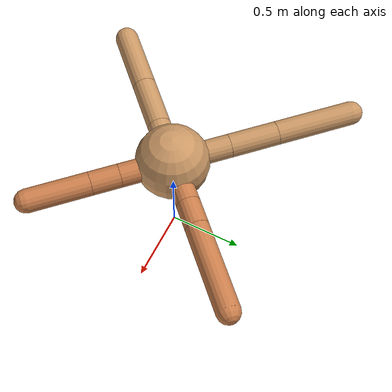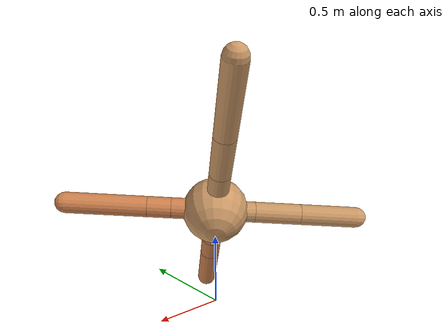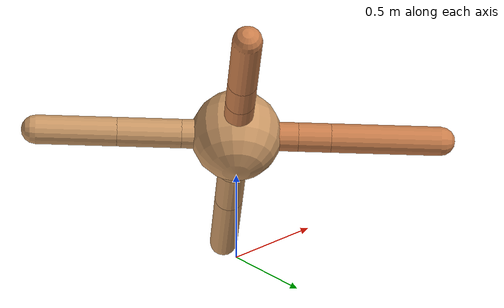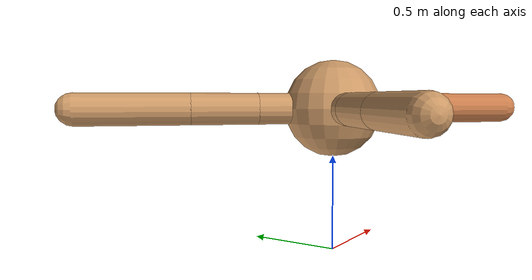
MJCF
<mujoco model="ant">
  <compiler angle="degree" coordinate="local" inertiafromgeom="true" />
  <option integrator="RK4" timestep="0.01" />
  <custom>
    <numeric data="0.0 0.0 0.55 1.0 0.0 0.0 0.0 0.0 1.0 0.0 -1.0 0.0 -1.0 0.0 1.0" name="init_qpos" />
  </custom>
  <default>
    <joint armature="1" damping="1" limited="true" />
    <geom conaffinity="0" condim="3" density="5.0" friction="1.5 0.1 0.1" margin="0.01" rgba="0.8 0.6 0.4 1" />
  </default>
  <worldbody>
    <body name="torso" pos="0 0 0.75">
      <geom name="torso_geom" pos="0 0 0" size="0.25" type="sphere" />

      <body name="front_left_leg" pos="0 0 0">
        <geom fromto="0.0 0.0 0.0 0.23804478207266913 0.23804478207266913 0.0" name="aux_1_geom" size="0.08" type="capsule" rgba=".8 .5 .3 1" />
        <body name="aux_1" pos="0.23804478207266913 0.23804478207266913 0.0">
          <joint axis="0 0 1" name="hip_1" pos="0.0 0.0 0.0" range="-40 40" type="hinge" />
          <geom fromto="0.0 0.0 0.0 0.12736476557352538 0.12736476557352538 0.0" name="left_leg_geom" size="0.08" type="capsule" rgba=".8 .5 .3 1" />
          <body pos="0.12736476557352538 0.12736476557352538 0.0" name="front_left_foot">
            <joint axis="-1 1 0" name="ankle_1" pos="0.0 0.0 0.0" range="30 100" type="hinge" />
            <geom fromto="0.0 0.0 0.0 0.4288985167544076 0.4288985167544076 0.0" name="left_ankle_geom" size="0.08" type="capsule" rgba=".8 .5 .3 1" />
          </body>
        </body>
      </body>
      <body name="front_right_leg" pos="0 0 0">
        <geom fromto="0.0 0.0 0.0 -0.2790606645009048 0.2790606645009048 0.0" name="aux_2_geom" size="0.08" type="capsule" />
        <body name="aux_2" pos="-0.2790606645009048 0.2790606645009048 0.0">
          <joint axis="0 0 1" name="hip_2" pos="0.0 0.0 0.0" range="-40 40" type="hinge" />
          <geom fromto="0.0 0.0 0.0 -0.23498690889168122 0.23498690889168122 0.0" name="right_leg_geom" size="0.08" type="capsule" />
          <body pos="-0.23498690889168122 0.23498690889168122 0.0" name="front_right_foot">
            <joint axis="1 1 0" name="ankle_2" pos="0.0 0.0 0.0" range="-100 -30" type="hinge" />
            <geom fromto="0.0 0.0 0.0 -0.3797872443365682 0.3797872443365682 0.0" name="right_ankle_geom" size="0.08" type="capsule" />
          </body>
        </body>
      </body>
      <body name="left_back_leg" pos="0 0 0">
        <geom fromto="0.0 0.0 0.0 -0.21268866967611474 -0.21268866967611474 0.0" name="aux_3_geom" size="0.08" type="capsule" />
        <body name="aux_3" pos="-0.21268866967611474 -0.21268866967611474 0.0">
          <joint axis="0 0 1" name="hip_3" pos="0.0 0.0 0.0" range="-40 40" type="hinge" />
          <geom fromto="0.0 0.0 0.0 -0.24921295166579516 -0.24921295166579516 0.0" name="back_leg_geom" size="0.08" type="capsule" />
          <body pos="-0.24921295166579516 -0.24921295166579516 0.0" name="left_back_foot">
            <joint axis="-1 1 0" name="ankle_3" pos="0.0 0.0 0.0" range="-100 -30" type="hinge" />
            <geom fromto="0.0 0.0 0.0 -0.31287528973784595 -0.31287528973784595 0.0" name="third_ankle_geom" size="0.08" type="capsule" />
          </body>
        </body>
      </body>
      <body name="right_back_leg" pos="0 0 0">
        <geom fromto="0.0 0.0 0.0 0.2548593412811487 -0.2548593412811487 0.0" name="aux_4_geom" size="0.08" type="capsule" rgba=".8 .5 .3 1" />
        <body name="aux_4" pos="0.2548593412811487 -0.2548593412811487 0.0">
          <joint axis="0 0 1" name="hip_4" pos="0.0 0.0 0.0" range="-40 40" type="hinge" />
          <geom fromto="0.0 0.0 0.0 0.1395239029322471 -0.1395239029322471 0.0" name="rightback_leg_geom" size="0.08" type="capsule" rgba=".8 .5 .3 1" />
          <body pos="0.1395239029322471 -0.1395239029322471 0.0" name="right_back_foot">
            <joint axis="1 1 0" name="ankle_4" pos="0.0 0.0 0.0" range="30 100" type="hinge" />
            <geom fromto="0.0 0.0 0.0 0.29965203665423135 -0.29965203665423135 0.0" name="fourth_ankle_geom" size="0.08" type="capsule" rgba=".8 .5 .3 1" />
          </body>
        </body>
      </body>
    </body>
  </worldbody>
  <actuator>
    <motor ctrllimited="true" ctrlrange="-1.0 1.0" joint="hip_4" gear="150" />
    <motor ctrllimited="true" ctrlrange="-1.0 1.0" joint="ankle_4" gear="150" />
    <motor ctrllimited="true" ctrlrange="-1.0 1.0" joint="hip_1" gear="150" />
    <motor ctrllimited="true" ctrlrange="-1.0 1.0" joint="ankle_1" gear="150" />
    <motor ctrllimited="true" ctrlrange="-1.0 1.0" joint="hip_2" gear="150" />
    <motor ctrllimited="true" ctrlrange="-1.0 1.0" joint="ankle_2" gear="150" />
    <motor ctrllimited="true" ctrlrange="-1.0 1.0" joint="hip_3" gear="150" />
    <motor ctrllimited="true" ctrlrange="-1.0 1.0" joint="ankle_3" gear="150" />
  </actuator>
</mujoco>
